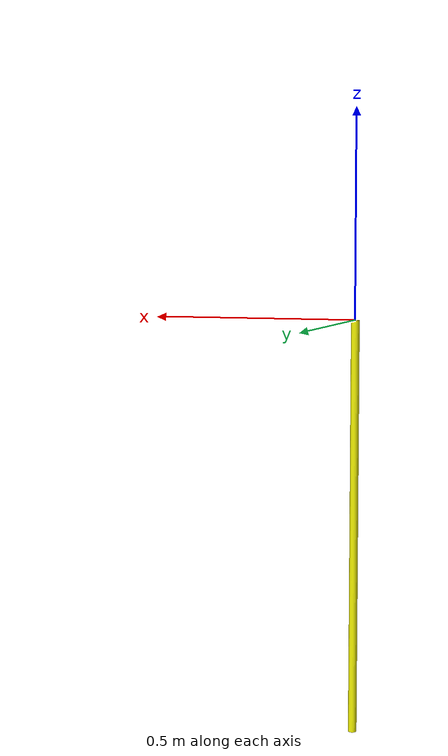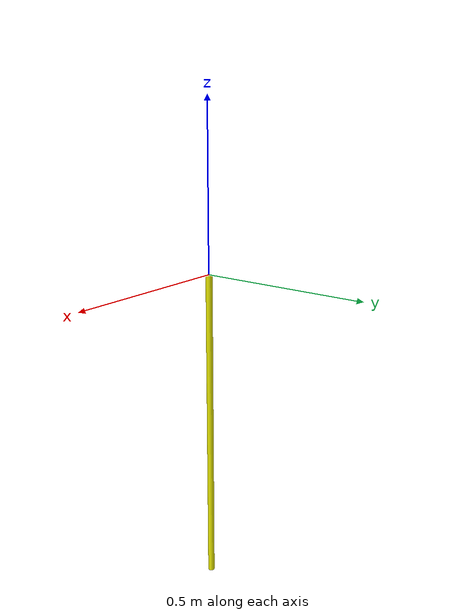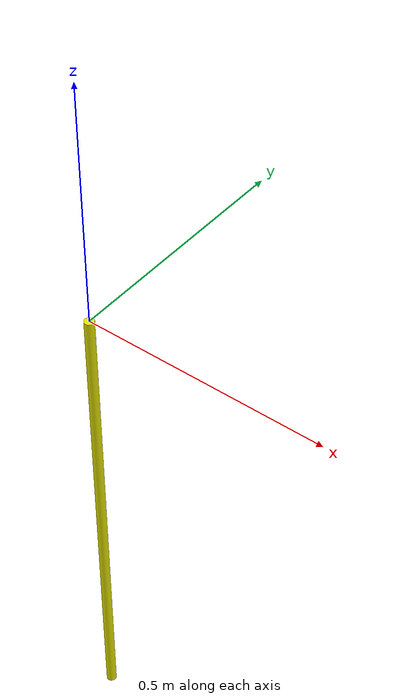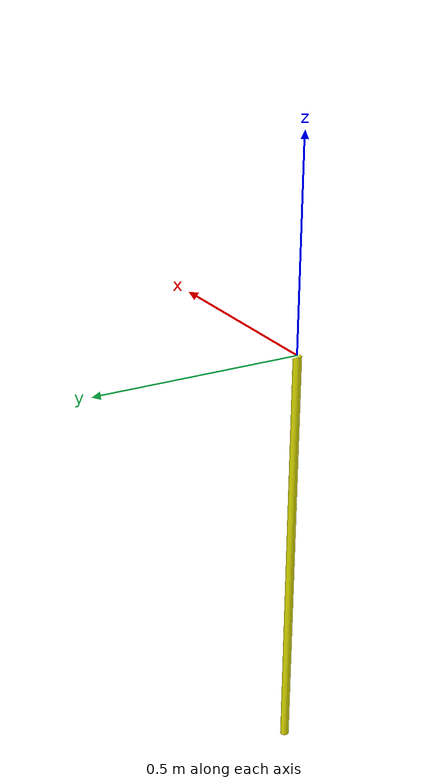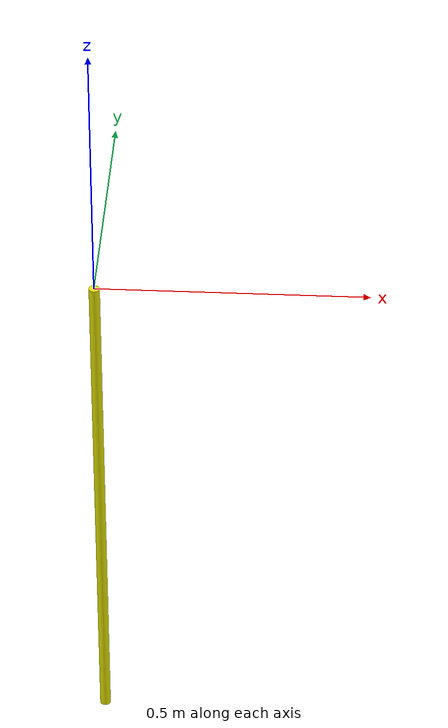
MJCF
<mujoco>
	<option gravity ="0 0 -9.81"/>
	<worldbody>
    <light diffuse=".5 .5 .5" pos="0 0 3" dir="0 0 -1"/>
		<body pos="0 0 0">
			<joint type="hinge" axis="0 1 0" pos="0 0 0"/>
			<inertial mass="1" pos="0 0 -0.5" diaginertia="0.1 0.1 0.01" />
			<geom type="cylinder" pos="0 0 -0.5" size="0.01 0.5" rgba=".9 .9 0 1"/>
		</body>
	</worldbody>
	<keyframe>
	<key qpos="0.5"/>
	</keyframe>
</mujoco>
